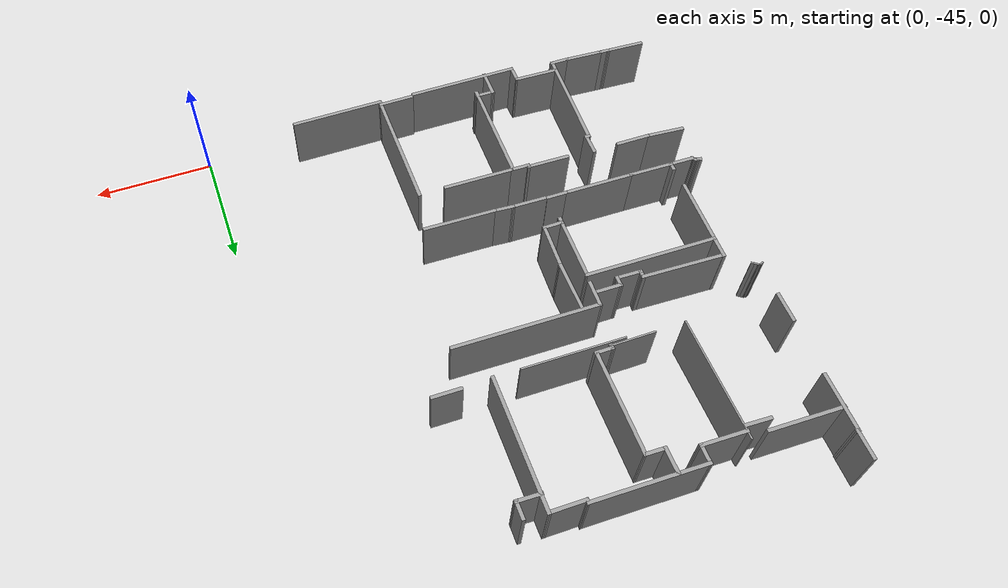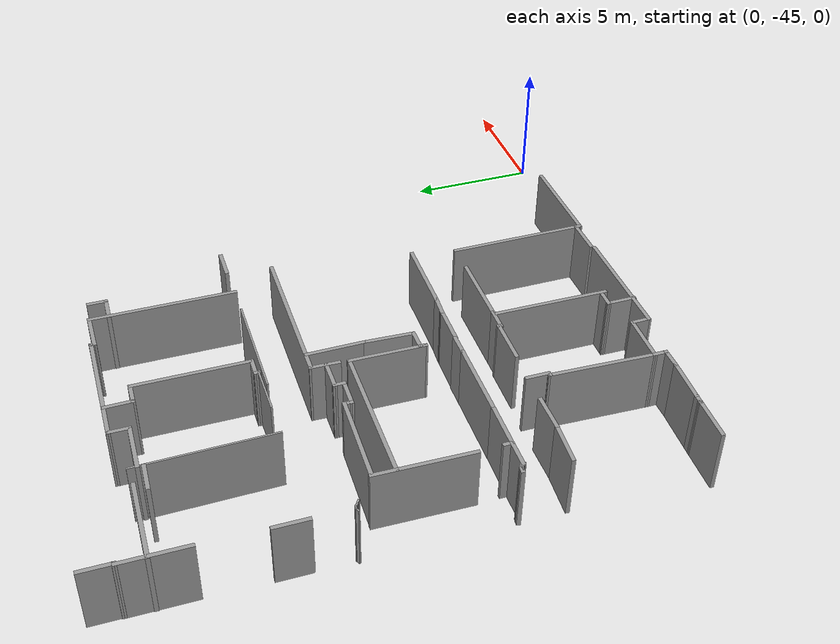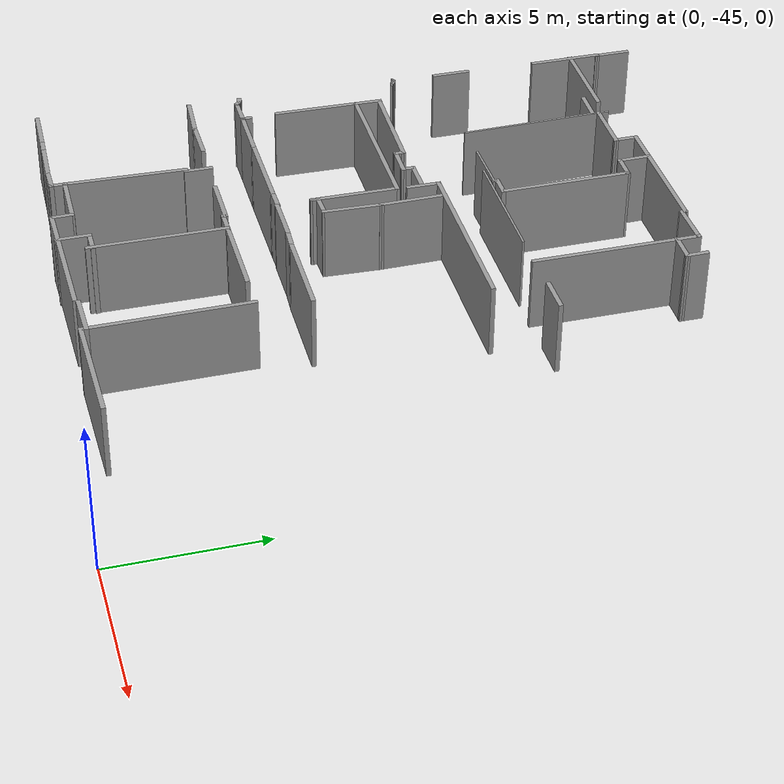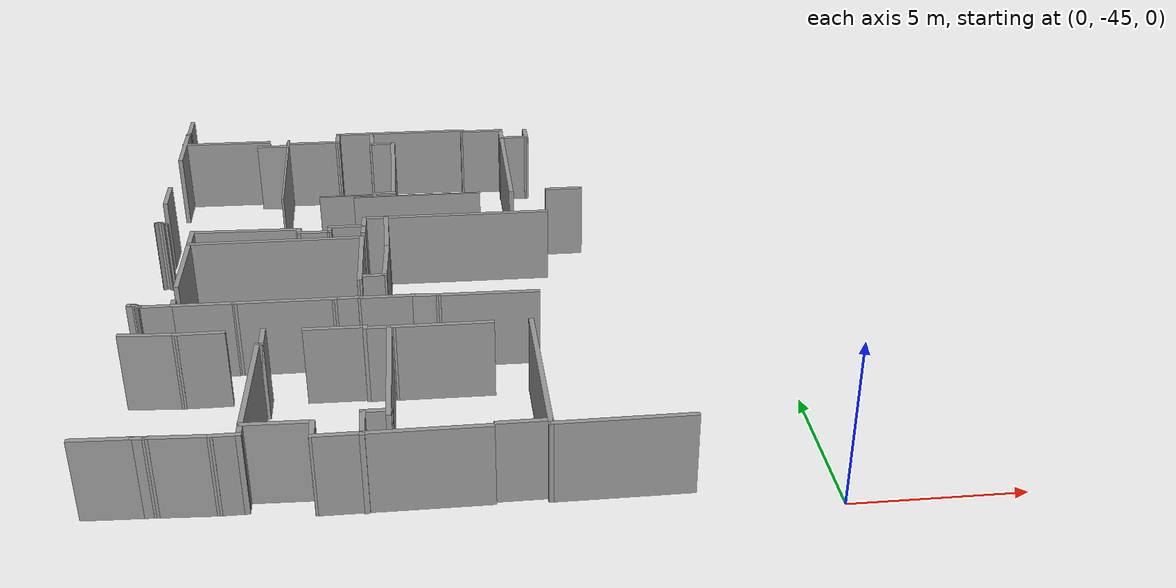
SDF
<sdf version="1.6">
 <model name="3_north">
  <pose>-14.229 -33.4428 0 0 -0 0</pose>
  <link name="Wall_183">
   <collision name="Wall_183_Collision">
    <geometry><box><size>3.97957 0.15 2.5</size></box></geometry>
    <pose>0 0 1.25 0 -0 0</pose>
   </collision>
   <visual name="Wall_183_Visual">
    <pose>0 0 1.25 0 -0 0</pose>
    <geometry><box><size>3.97957 0.15 2.5</size></box></geometry>
    <material>
     <script><uri>file://media/materials/scripts/gazebo.material</uri><name>Gazebo/Grey</name></script>
     <ambient>1 1 1 1</ambient>
    </material>
   </visual>
   <pose>8.3757 -10.5966 0 0 0 -3.13559</pose>
  </link>
  <link name="Wall_184">
   <collision name="Wall_184_Collision">
    <geometry><box><size>5.46311 0.15 2.5</size></box></geometry>
    <pose>0 0 1.25 0 -0 0</pose>
   </collision>
   <visual name="Wall_184_Visual">
    <pose>0 0 1.25 0 -0 0</pose>
    <geometry><box><size>5.46311 0.15 2.5</size></box></geometry>
    <material>
     <script><uri>file://media/materials/scripts/gazebo.material</uri><name>Gazebo/Grey</name></script>
     <ambient>1 1 1 1</ambient>
    </material>
   </visual>
   <pose>6.4437 -7.95163 0 0 -0 1.57729</pose>
  </link>
  <link name="Wall_187">
   <collision name="Wall_187_Collision">
    <geometry><box><size>1.54155 0.15 2.5</size></box></geometry>
    <pose>0 0 1.25 0 -0 0</pose>
   </collision>
   <visual name="Wall_187_Visual">
    <pose>0 0 1.25 0 -0 0</pose>
    <geometry><box><size>1.54155 0.15 2.5</size></box></geometry>
    <material>
     <script><uri>file://media/materials/scripts/gazebo.material</uri><name>Gazebo/Grey</name></script>
     <ambient>1 1 1 1</ambient>
    </material>
   </visual>
   <pose>5.7652 -10.4529 0 0 0 -3.13333</pose>
  </link>
  <link name="Wall_189">
   <collision name="Wall_189_Collision">
    <geometry><box><size>4.75023 0.15 2.5</size></box></geometry>
    <pose>0 0 1.25 0 -0 0</pose>
   </collision>
   <visual name="Wall_189_Visual">
    <pose>0 0 1.25 0 -0 0</pose>
    <geometry><box><size>4.75023 0.15 2.5</size></box></geometry>
    <material>
     <script><uri>file://media/materials/scripts/gazebo.material</uri><name>Gazebo/Grey</name></script>
     <ambient>1 1 1 1</ambient>
    </material>
   </visual>
   <pose>2.63145 -10.5564 0 0 0 -3.13909</pose>
  </link>
  <link name="Wall_190">
   <collision name="Wall_190_Collision">
    <geometry><box><size>0.805601 0.15 2.5</size></box></geometry>
    <pose>0 0 1.25 0 -0 0</pose>
   </collision>
   <visual name="Wall_190_Visual">
    <pose>0 0 1.25 0 -0 0</pose>
    <geometry><box><size>0.805601 0.15 2.5</size></box></geometry>
    <material>
     <script><uri>file://media/materials/scripts/gazebo.material</uri><name>Gazebo/Grey</name></script>
     <ambient>1 1 1 1</ambient>
    </material>
   </visual>
   <pose>0.325705 -10.2344 0 0 -0 1.58834</pose>
  </link>
  <link name="Wall_192">
   <collision name="Wall_192_Collision">
    <geometry><box><size>1.87515 0.15 2.5</size></box></geometry>
    <pose>0 0 1.25 0 -0 0</pose>
   </collision>
   <visual name="Wall_192_Visual">
    <pose>0 0 1.25 0 -0 0</pose>
    <geometry><box><size>1.87515 0.15 2.5</size></box></geometry>
    <material>
     <script><uri>file://media/materials/scripts/gazebo.material</uri><name>Gazebo/Grey</name></script>
     <ambient>1 1 1 1</ambient>
    </material>
   </visual>
   <pose>0.768455 -5.18013 0 0 0 -0.013333</pose>
  </link>
  <link name="Wall_193">
   <collision name="Wall_193_Collision">
    <geometry><box><size>0.219952 0.15 2.5</size></box></geometry>
    <pose>0 0 1.25 0 -0 0</pose>
   </collision>
   <visual name="Wall_193_Visual">
    <pose>0 0 1.25 0 -0 0</pose>
    <geometry><box><size>0.219952 0.15 2.5</size></box></geometry>
    <material>
     <script><uri>file://media/materials/scripts/gazebo.material</uri><name>Gazebo/Grey</name></script>
     <ambient>1 1 1 1</ambient>
    </material>
   </visual>
   <pose>1.63095 -5.22613 0 0 0 -1.5708</pose>
  </link>
  <link name="Wall_194">
   <collision name="Wall_194_Collision">
    <geometry><box><size>0.943583 0.15 2.5</size></box></geometry>
    <pose>0 0 1.25 0 -0 0</pose>
   </collision>
   <visual name="Wall_194_Visual">
    <pose>0 0 1.25 0 -0 0</pose>
    <geometry><box><size>0.943583 0.15 2.5</size></box></geometry>
    <material>
     <script><uri>file://media/materials/scripts/gazebo.material</uri><name>Gazebo/Grey</name></script>
     <ambient>1 1 1 1</ambient>
    </material>
   </visual>
   <pose>2.02771 -5.26638 0 0 0 -0.014492</pose>
  </link>
  <link name="Wall_195">
   <collision name="Wall_195_Collision">
    <geometry><box><size>2.99988 0.15 2.5</size></box></geometry>
    <pose>0 0 1.25 0 -0 0</pose>
   </collision>
   <visual name="Wall_195_Visual">
    <pose>0 0 1.25 0 -0 0</pose>
    <geometry><box><size>2.99988 0.15 2.5</size></box></geometry>
    <material>
     <script><uri>file://media/materials/scripts/gazebo.material</uri><name>Gazebo/Grey</name></script>
     <ambient>1 1 1 1</ambient>
    </material>
   </visual>
   <pose>3.84936 -5.28218 0 0 0 -0.007049</pose>
  </link>
  <link name="Wall_198">
   <collision name="Wall_198_Collision">
    <geometry><box><size>4.60218 0.15 2.5</size></box></geometry>
    <pose>0 0 1.25 0 -0 0</pose>
   </collision>
   <visual name="Wall_198_Visual">
    <pose>0 0 1.25 0 -0 0</pose>
    <geometry><box><size>4.60218 0.15 2.5</size></box></geometry>
    <material>
     <script><uri>file://media/materials/scripts/gazebo.material</uri><name>Gazebo/Grey</name></script>
     <ambient>1 1 1 1</ambient>
    </material>
   </visual>
   <pose>2.30017 -7.50914 0 0 0 -1.57666</pose>
  </link>
  <link name="Wall_200">
   <collision name="Wall_200_Collision">
    <geometry><box><size>1.18478 0.15 2.5</size></box></geometry>
    <pose>0 0 1.25 0 -0 0</pose>
   </collision>
   <visual name="Wall_200_Visual">
    <pose>0 0 1.25 0 -0 0</pose>
    <geometry><box><size>1.18478 0.15 2.5</size></box></geometry>
    <material>
     <script><uri>file://media/materials/scripts/gazebo.material</uri><name>Gazebo/Grey</name></script>
     <ambient>1 1 1 1</ambient>
    </material>
   </visual>
   <pose>1.60887 -10.0787 0 0 -0 1.5708</pose>
  </link>
  <link name="Wall_201">
   <collision name="Wall_201_Collision">
    <geometry><box><size>0.863096 0.15 2.5</size></box></geometry>
    <pose>0 0 1.25 0 -0 0</pose>
   </collision>
   <visual name="Wall_201_Visual">
    <pose>0 0 1.25 0 -0 0</pose>
    <geometry><box><size>0.863096 0.15 2.5</size></box></geometry>
    <material>
     <script><uri>file://media/materials/scripts/gazebo.material</uri><name>Gazebo/Grey</name></script>
     <ambient>1 1 1 1</ambient>
    </material>
   </visual>
   <pose>1.96539 -9.56566 0 0 0 -0.012195</pose>
  </link>
  <link name="Wall_203">
   <collision name="Wall_203_Collision">
    <geometry><box><size>1.99219 0.15 2.5</size></box></geometry>
    <pose>0 0 1.25 0 -0 0</pose>
   </collision>
   <visual name="Wall_203_Visual">
    <pose>0 0 1.25 0 -0 0</pose>
    <geometry><box><size>1.99219 0.15 2.5</size></box></geometry>
    <material>
     <script><uri>file://media/materials/scripts/gazebo.material</uri><name>Gazebo/Grey</name></script>
     <ambient>1 1 1 1</ambient>
    </material>
   </visual>
   <pose>-0.600805 -9.8818 0 0 -0 3.11463</pose>
  </link>
  <link name="Wall_204">
   <collision name="Wall_204_Collision">
    <geometry><box><size>0.593819 0.15 2.5</size></box></geometry>
    <pose>0 0 1.25 0 -0 0</pose>
   </collision>
   <visual name="Wall_204_Visual">
    <pose>0 0 1.25 0 -0 0</pose>
    <geometry><box><size>0.593819 0.15 2.5</size></box></geometry>
    <material>
     <script><uri>file://media/materials/scripts/gazebo.material</uri><name>Gazebo/Grey</name></script>
     <ambient>1 1 1 1</ambient>
    </material>
   </visual>
   <pose>-1.52156 -10.0787 0 0 0 -1.5708</pose>
  </link>
  <link name="Wall_205">
   <collision name="Wall_205_Collision">
    <geometry><box><size>0.863096 0.15 2.5</size></box></geometry>
    <pose>0 0 1.25 0 -0 0</pose>
   </collision>
   <visual name="Wall_205_Visual">
    <pose>0 0 1.25 0 -0 0</pose>
    <geometry><box><size>0.863096 0.15 2.5</size></box></geometry>
    <material>
     <script><uri>file://media/materials/scripts/gazebo.material</uri><name>Gazebo/Grey</name></script>
     <ambient>1 1 1 1</ambient>
    </material>
   </visual>
   <pose>-1.87809 -10.3004 0 0 -0 3.14159</pose>
  </link>
  <link name="Wall_206">
   <collision name="Wall_206_Collision">
    <geometry><box><size>1.77797 0.15 2.5</size></box></geometry>
    <pose>0 0 1.25 0 -0 0</pose>
   </collision>
   <visual name="Wall_206_Visual">
    <pose>0 0 1.25 0 -0 0</pose>
    <geometry><box><size>1.77797 0.15 2.5</size></box></geometry>
    <material>
     <script><uri>file://media/materials/scripts/gazebo.material</uri><name>Gazebo/Grey</name></script>
     <ambient>1 1 1 1</ambient>
    </material>
   </visual>
   <pose>-3.04765 -10.2613 0 0 -0 3.0935</pose>
  </link>
  <link name="Wall_207">
   <collision name="Wall_207_Collision">
    <geometry><box><size>0.480892 0.15 2.5</size></box></geometry>
    <pose>0 0 1.25 0 -0 0</pose>
   </collision>
   <visual name="Wall_207_Visual">
    <pose>0 0 1.25 0 -0 0</pose>
    <geometry><box><size>0.480892 0.15 2.5</size></box></geometry>
    <material>
     <script><uri>file://media/materials/scripts/gazebo.material</uri><name>Gazebo/Grey</name></script>
     <ambient>1 1 1 1</ambient>
    </material>
   </visual>
   <pose>-4.02591 -10.2135 0 0 -0 3.08901</pose>
  </link>
  <link name="Wall_208">
   <collision name="Wall_208_Collision">
    <geometry><box><size>1.74247 0.15 2.5</size></box></geometry>
    <pose>0 0 1.25 0 -0 0</pose>
   </collision>
   <visual name="Wall_208_Visual">
    <pose>0 0 1.25 0 -0 0</pose>
    <geometry><box><size>1.74247 0.15 2.5</size></box></geometry>
    <material>
     <script><uri>file://media/materials/scripts/gazebo.material</uri><name>Gazebo/Grey</name></script>
     <ambient>1 1 1 1</ambient>
    </material>
   </visual>
   <pose>-4.98678 -10.1744 0 0 -0 3.10336</pose>
  </link>
  <link name="Wall_210">
   <collision name="Wall_210_Collision">
    <geometry><box><size>4.11824 0.15 2.5</size></box></geometry>
    <pose>0 0 1.25 0 -0 0</pose>
   </collision>
   <visual name="Wall_210_Visual">
    <pose>0 0 1.25 0 -0 0</pose>
    <geometry><box><size>4.11824 0.15 2.5</size></box></geometry>
    <material>
     <script><uri>file://media/materials/scripts/gazebo.material</uri><name>Gazebo/Grey</name></script>
     <ambient>1 1 1 1</ambient>
    </material>
   </visual>
   <pose>-1.45402 -7.874 0 0 -0 1.53675</pose>
  </link>
  <link name="Wall_211">
   <collision name="Wall_211_Collision">
    <geometry><box><size>0.2535 0.15 2.5</size></box></geometry>
    <pose>0 0 1.25 0 -0 0</pose>
   </collision>
   <visual name="Wall_211_Visual">
    <pose>0 0 1.25 0 -0 0</pose>
    <geometry><box><size>0.2535 0.15 2.5</size></box></geometry>
    <material>
     <script><uri>file://media/materials/scripts/gazebo.material</uri><name>Gazebo/Grey</name></script>
     <ambient>1 1 1 1</ambient>
    </material>
   </visual>
   <pose>-1.33473 -5.89103 0 0 -0 0</pose>
  </link>
  <link name="Wall_212">
   <collision name="Wall_212_Collision">
    <geometry><box><size>0.9665 0.15 2.5</size></box></geometry>
    <pose>0 0 1.25 0 -0 0</pose>
   </collision>
   <visual name="Wall_212_Visual">
    <pose>0 0 1.25 0 -0 0</pose>
    <geometry><box><size>0.9665 0.15 2.5</size></box></geometry>
    <material>
     <script><uri>file://media/materials/scripts/gazebo.material</uri><name>Gazebo/Grey</name></script>
     <ambient>1 1 1 1</ambient>
    </material>
   </visual>
   <pose>-1.28298 -5.48278 0 0 -0 1.5708</pose>
  </link>
  <link name="Wall_214">
   <collision name="Wall_214_Collision">
    <geometry><box><size>1.71679 0.15 2.5</size></box></geometry>
    <pose>0 0 1.25 0 -0 0</pose>
   </collision>
   <visual name="Wall_214_Visual">
    <pose>0 0 1.25 0 -0 0</pose>
    <geometry><box><size>1.71679 0.15 2.5</size></box></geometry>
    <material>
     <script><uri>file://media/materials/scripts/gazebo.material</uri><name>Gazebo/Grey</name></script>
     <ambient>1 1 1 1</ambient>
    </material>
   </visual>
   <pose>-4.54845 -5.0405 0 0 0 -0.071403</pose>
  </link>
  <link name="Wall_215">
   <collision name="Wall_215_Collision">
    <geometry><box><size>1.5 0.15 2.5</size></box></geometry>
    <pose>0 0 1.25 0 -0 0</pose>
   </collision>
   <visual name="Wall_215_Visual">
    <pose>0 0 1.25 0 -0 0</pose>
    <geometry><box><size>1.5 0.15 2.5</size></box></geometry>
    <material>
     <script><uri>file://media/materials/scripts/gazebo.material</uri><name>Gazebo/Grey</name></script>
     <ambient>1 1 1 1</ambient>
    </material>
   </visual>
   <pose>-3.09205 -5.09639 0 0 -0 0</pose>
  </link>
  <link name="Wall_29">
   <collision name="Wall_29_Collision">
    <geometry><box><size>1.25 0.15 2.5</size></box></geometry>
    <pose>0 0 1.25 0 -0 0</pose>
   </collision>
   <visual name="Wall_29_Visual">
    <pose>0 0 1.25 0 -0 0</pose>
    <geometry><box><size>1.25 0.15 2.5</size></box></geometry>
    <material>
     <script><uri>file://media/materials/scripts/gazebo.material</uri><name>Gazebo/Grey</name></script>
     <ambient>1 1 1 1</ambient>
    </material>
   </visual>
   <pose>-5.0753 10.2692 0 0 0 -1.5708</pose>
  </link>
  <link name="Wall_30">
   <collision name="Wall_30_Collision">
    <geometry><box><size>0.182933 0.15 2.5</size></box></geometry>
    <pose>0 0 1.25 0 -0 0</pose>
   </collision>
   <visual name="Wall_30_Visual">
    <pose>0 0 1.25 0 -0 0</pose>
    <geometry><box><size>0.182933 0.15 2.5</size></box></geometry>
    <material>
     <script><uri>file://media/materials/scripts/gazebo.material</uri><name>Gazebo/Grey</name></script>
     <ambient>1 1 1 1</ambient>
    </material>
   </visual>
   <pose>-5.09173 9.72018 0 0 -0 3.08241</pose>
  </link>
  <link name="Wall_31">
   <collision name="Wall_31_Collision">
    <geometry><box><size>2.5 0.15 2.5</size></box></geometry>
    <pose>0 0 1.25 0 -0 0</pose>
   </collision>
   <visual name="Wall_31_Visual">
    <pose>0 0 1.25 0 -0 0</pose>
    <geometry><box><size>2.5 0.15 2.5</size></box></geometry>
    <material>
     <script><uri>file://media/materials/scripts/gazebo.material</uri><name>Gazebo/Grey</name></script>
     <ambient>1 1 1 1</ambient>
    </material>
   </visual>
   <pose>-5.10817 8.54616 0 0 0 -1.5708</pose>
  </link>
  <link name="Wall_33">
   <collision name="Wall_33_Collision">
    <geometry><box><size>1.32202 0.15 2.5</size></box></geometry>
    <pose>0 0 1.25 0 -0 0</pose>
   </collision>
   <visual name="Wall_33_Visual">
    <pose>0 0 1.25 0 -0 0</pose>
    <geometry><box><size>1.32202 0.15 2.5</size></box></geometry>
    <material>
     <script><uri>file://media/materials/scripts/gazebo.material</uri><name>Gazebo/Grey</name></script>
     <ambient>1 1 1 1</ambient>
    </material>
   </visual>
   <pose>-5.17314 4.33924 0 0 0 -1.5708</pose>
  </link>
  <link name="Wall_378">
   <collision name="Wall_378_Collision">
    <geometry><box><size>0.27695 0.15 2.5</size></box></geometry>
    <pose>0 0 1.25 0 -0 0</pose>
   </collision>
   <visual name="Wall_378_Visual">
    <pose>0 0 1.25 0 -0 0</pose>
    <geometry><box><size>0.27695 0.15 2.5</size></box></geometry>
    <material>
     <script><uri>file://media/materials/scripts/gazebo.material</uri><name>Gazebo/Grey</name></script>
     <ambient>1 1 1 1</ambient>
    </material>
   </visual>
   <pose>-5.26085 -3.24571 0 0 0 -0.135528</pose>
  </link>
  <link name="Wall_379">
   <collision name="Wall_379_Collision">
    <geometry><box><size>0.231863 0.15 2.5</size></box></geometry>
    <pose>0 0 1.25 0 -0 0</pose>
   </collision>
   <visual name="Wall_379_Visual">
    <pose>0 0 1.25 0 -0 0</pose>
    <geometry><box><size>0.231863 0.15 2.5</size></box></geometry>
    <material>
     <script><uri>file://media/materials/scripts/gazebo.material</uri><name>Gazebo/Grey</name></script>
     <ambient>1 1 1 1</ambient>
    </material>
   </visual>
   <pose>-5.1608 -3.27143 0 0 0 -0.432408</pose>
  </link>
  <link name="Wall_380">
   <collision name="Wall_380_Collision">
    <geometry><box><size>0.247366 0.15 2.5</size></box></geometry>
    <pose>0 0 1.25 0 -0 0</pose>
   </collision>
   <visual name="Wall_380_Visual">
    <pose>0 0 1.25 0 -0 0</pose>
    <geometry><box><size>0.247366 0.15 2.5</size></box></geometry>
    <material>
     <script><uri>file://media/materials/scripts/gazebo.material</uri><name>Gazebo/Grey</name></script>
     <ambient>1 1 1 1</ambient>
    </material>
   </visual>
   <pose>-5.08647 -3.32003 0 0 0 -0.702257</pose>
  </link>
  <link name="Wall_381">
   <collision name="Wall_381_Collision">
    <geometry><box><size>0.194655 0.15 2.5</size></box></geometry>
    <pose>0 0 1.25 0 -0 0</pose>
   </collision>
   <visual name="Wall_381_Visual">
    <pose>0 0 1.25 0 -0 0</pose>
    <geometry><box><size>0.194655 0.15 2.5</size></box></geometry>
    <material>
     <script><uri>file://media/materials/scripts/gazebo.material</uri><name>Gazebo/Grey</name></script>
     <ambient>1 1 1 1</ambient>
    </material>
   </visual>
   <pose>-5.03215 -3.36577 0 0 0 -0.694738</pose>
  </link>
  <link name="Wall_382">
   <collision name="Wall_382_Collision">
    <geometry><box><size>1.12205 0.15 2.5</size></box></geometry>
    <pose>0 0 1.25 0 -0 0</pose>
   </collision>
   <visual name="Wall_382_Visual">
    <pose>0 0 1.25 0 -0 0</pose>
    <geometry><box><size>1.12205 0.15 2.5</size></box></geometry>
    <material>
     <script><uri>file://media/materials/scripts/gazebo.material</uri><name>Gazebo/Grey</name></script>
     <ambient>1 1 1 1</ambient>
    </material>
   </visual>
   <pose>-4.52901 -3.38578 0 0 0 -0.011764</pose>
  </link>
  <link name="Wall_383">
   <collision name="Wall_383_Collision">
    <geometry><box><size>1.95697 0.15 2.5</size></box></geometry>
    <pose>0 0 1.25 0 -0 0</pose>
   </collision>
   <visual name="Wall_383_Visual">
    <pose>0 0 1.25 0 -0 0</pose>
    <geometry><box><size>1.95697 0.15 2.5</size></box></geometry>
    <material>
     <script><uri>file://media/materials/scripts/gazebo.material</uri><name>Gazebo/Grey</name></script>
     <ambient>1 1 1 1</ambient>
    </material>
   </visual>
   <pose>-3.13965 -3.4058 0 0 0 -0.015821</pose>
  </link>
  <link name="Wall_385">
   <collision name="Wall_385_Collision">
    <geometry><box><size>3.07747 0.15 2.5</size></box></geometry>
    <pose>0 0 1.25 0 -0 0</pose>
   </collision>
   <visual name="Wall_385_Visual">
    <pose>0 0 1.25 0 -0 0</pose>
    <geometry><box><size>3.07747 0.15 2.5</size></box></geometry>
    <material>
     <script><uri>file://media/materials/scripts/gazebo.material</uri><name>Gazebo/Grey</name></script>
     <ambient>1 1 1 1</ambient>
    </material>
   </visual>
   <pose>-0.761153 -3.43153 0 0 0 -0.007812</pose>
  </link>
  <link name="Wall_386">
   <collision name="Wall_386_Collision">
    <geometry><box><size>0.921867 0.15 2.5</size></box></geometry>
    <pose>0 0 1.25 0 -0 0</pose>
   </collision>
   <visual name="Wall_386_Visual">
    <pose>0 0 1.25 0 -0 0</pose>
    <geometry><box><size>0.921867 0.15 2.5</size></box></geometry>
    <material>
     <script><uri>file://media/materials/scripts/gazebo.material</uri><name>Gazebo/Grey</name></script>
     <ambient>1 1 1 1</ambient>
    </material>
   </visual>
   <pose>1.08847 -3.44296 0 0 -0 0</pose>
  </link>
  <link name="Wall_387">
   <collision name="Wall_387_Collision">
    <geometry><box><size>0.17287 0.15 2.5</size></box></geometry>
    <pose>0 0 1.25 0 -0 0</pose>
   </collision>
   <visual name="Wall_387_Visual">
    <pose>0 0 1.25 0 -0 0</pose>
    <geometry><box><size>0.17287 0.15 2.5</size></box></geometry>
    <material>
     <script><uri>file://media/materials/scripts/gazebo.material</uri><name>Gazebo/Grey</name></script>
     <ambient>1 1 1 1</ambient>
    </material>
   </visual>
   <pose>1.4744 -3.4544 0 0 0 -1.5708</pose>
  </link>
  <link name="Wall_388">
   <collision name="Wall_388_Collision">
    <geometry><box><size>1.68247 0.15 2.5</size></box></geometry>
    <pose>0 0 1.25 0 -0 0</pose>
   </collision>
   <visual name="Wall_388_Visual">
    <pose>0 0 1.25 0 -0 0</pose>
    <geometry><box><size>1.68247 0.15 2.5</size></box></geometry>
    <material>
     <script><uri>file://media/materials/scripts/gazebo.material</uri><name>Gazebo/Grey</name></script>
     <ambient>1 1 1 1</ambient>
    </material>
   </visual>
   <pose>2.24055 -3.47727 0 0 0 -0.014924</pose>
  </link>
  <link name="Wall_390">
   <collision name="Wall_390_Collision">
    <geometry><box><size>3.12356 0.15 2.5</size></box></geometry>
    <pose>0 0 1.25 0 -0 0</pose>
   </collision>
   <visual name="Wall_390_Visual">
    <pose>0 0 1.25 0 -0 0</pose>
    <geometry><box><size>3.12356 0.15 2.5</size></box></geometry>
    <material>
     <script><uri>file://media/materials/scripts/gazebo.material</uri><name>Gazebo/Grey</name></script>
     <ambient>1 1 1 1</ambient>
    </material>
   </visual>
   <pose>5.27656 -3.56589 0 0 -0 3.12429</pose>
  </link>
  <link name="Wall_391">
   <collision name="Wall_391_Collision">
    <geometry><box><size>0.929285 0.15 2.5</size></box></geometry>
    <pose>0 0 1.25 0 -0 0</pose>
   </collision>
   <visual name="Wall_391_Visual">
    <pose>0 0 1.25 0 -0 0</pose>
    <geometry><box><size>0.929285 0.15 2.5</size></box></geometry>
    <material>
     <script><uri>file://media/materials/scripts/gazebo.material</uri><name>Gazebo/Grey</name></script>
     <ambient>1 1 1 1</ambient>
    </material>
   </visual>
   <pose>3.40121 -3.51443 0 0 -0 3.07551</pose>
  </link>
  <link name="Wall_463">
   <collision name="Wall_463_Collision">
    <geometry><box><size>1.13869 0.15 2.5</size></box></geometry>
    <pose>0 0 1.25 0 -0 0</pose>
   </collision>
   <visual name="Wall_463_Visual">
    <pose>0 0 1.25 0 -0 0</pose>
    <geometry><box><size>1.13869 0.15 2.5</size></box></geometry>
    <material>
     <script><uri>file://media/materials/scripts/gazebo.material</uri><name>Gazebo/Grey</name></script>
     <ambient>1 1 1 1</ambient>
    </material>
   </visual>
   <pose>1.71097 8.5914 0 0 0 -1.55541</pose>
  </link>
  <link name="Wall_464">
   <collision name="Wall_464_Collision">
    <geometry><box><size>0.925795 0.15 2.5</size></box></geometry>
    <pose>0 0 1.25 0 -0 0</pose>
   </collision>
   <visual name="Wall_464_Visual">
    <pose>0 0 1.25 0 -0 0</pose>
    <geometry><box><size>0.925795 0.15 2.5</size></box></geometry>
    <material>
     <script><uri>file://media/materials/scripts/gazebo.material</uri><name>Gazebo/Grey</name></script>
     <ambient>1 1 1 1</ambient>
    </material>
   </visual>
   <pose>2.1064 8.08951 0 0 0 -0.019605</pose>
  </link>
  <link name="Wall_465">
   <collision name="Wall_465_Collision">
    <geometry><box><size>4.34762 0.15 2.5</size></box></geometry>
    <pose>0 0 1.25 0 -0 0</pose>
   </collision>
   <visual name="Wall_465_Visual">
    <pose>0 0 1.25 0 -0 0</pose>
    <geometry><box><size>4.34762 0.15 2.5</size></box></geometry>
    <material>
     <script><uri>file://media/materials/scripts/gazebo.material</uri><name>Gazebo/Grey</name></script>
     <ambient>1 1 1 1</ambient>
    </material>
   </visual>
   <pose>2.49422 5.98309 0 0 0 -1.5708</pose>
  </link>
  <link name="Wall_467">
   <collision name="Wall_467_Collision">
    <geometry><box><size>1.89607 0.07 2.5</size></box></geometry>
    <pose>0 0 1.25 0 -0 0</pose>
   </collision>
   <visual name="Wall_467_Visual">
    <pose>0 0 1.25 0 -0 0</pose>
    <geometry><box><size>1.89607 0.07 2.5</size></box></geometry>
    <material>
     <script><uri>file://media/materials/scripts/gazebo.material</uri><name>Gazebo/Grey</name></script>
     <ambient>1 1 1 1</ambient>
    </material>
   </visual>
   <pose>0.937041 3.69801 0 0 -0 0.004381</pose>
  </link>
  <link name="Wall_469">
   <collision name="Wall_469_Collision">
    <geometry><box><size>4.29792 0.07 2.5</size></box></geometry>
    <pose>0 0 1.25 0 -0 0</pose>
   </collision>
   <visual name="Wall_469_Visual">
    <pose>0 0 1.25 0 -0 0</pose>
    <geometry><box><size>4.29792 0.07 2.5</size></box></geometry>
    <material>
     <script><uri>file://media/materials/scripts/gazebo.material</uri><name>Gazebo/Grey</name></script>
     <ambient>1 1 1 1</ambient>
    </material>
   </visual>
   <pose>3.29393 3.53796 0 0 0 -0.008068</pose>
  </link>
  <link name="Wall_471">
   <collision name="Wall_471_Collision">
    <geometry><box><size>0.255869 0.15 2.5</size></box></geometry>
    <pose>0 0 1.25 0 -0 0</pose>
   </collision>
   <visual name="Wall_471_Visual">
    <pose>0 0 1.25 0 -0 0</pose>
    <geometry><box><size>0.255869 0.15 2.5</size></box></geometry>
    <material>
     <script><uri>file://media/materials/scripts/gazebo.material</uri><name>Gazebo/Grey</name></script>
     <ambient>1 1 1 1</ambient>
    </material>
   </visual>
   <pose>1.84727 3.75486 0 0 -0 1.62316</pose>
  </link>
  <link name="Wall_472">
   <collision name="Wall_472_Collision">
    <geometry><box><size>0.807541 0.15 2.5</size></box></geometry>
    <pose>0 0 1.25 0 -0 0</pose>
   </collision>
   <visual name="Wall_472_Visual">
    <pose>0 0 1.25 0 -0 0</pose>
    <geometry><box><size>0.807541 0.15 2.5</size></box></geometry>
    <material>
     <script><uri>file://media/materials/scripts/gazebo.material</uri><name>Gazebo/Grey</name></script>
     <ambient>1 1 1 1</ambient>
    </material>
   </visual>
   <pose>2.17326 3.80486 0 0 0 -0.008695</pose>
  </link>
  <link name="Wall_474">
   <collision name="Wall_474_Collision">
    <geometry><box><size>6.17083 0.15 2.5</size></box></geometry>
    <pose>0 0 1.25 0 -0 0</pose>
   </collision>
   <visual name="Wall_474_Visual">
    <pose>0 0 1.25 0 -0 0</pose>
    <geometry><box><size>6.17083 0.15 2.5</size></box></geometry>
    <material>
     <script><uri>file://media/materials/scripts/gazebo.material</uri><name>Gazebo/Grey</name></script>
     <ambient>1 1 1 1</ambient>
    </material>
   </visual>
   <pose>4.53027 1.88277 0 0 0 -0.010474</pose>
  </link>
  <link name="Wall_476">
   <collision name="Wall_476_Collision">
    <geometry><box><size>1.1591 0.15 2.5</size></box></geometry>
    <pose>0 0 1.25 0 -0 0</pose>
   </collision>
   <visual name="Wall_476_Visual">
    <pose>0 0 1.25 0 -0 0</pose>
    <geometry><box><size>1.1591 0.15 2.5</size></box></geometry>
    <material>
     <script><uri>file://media/materials/scripts/gazebo.material</uri><name>Gazebo/Grey</name></script>
     <ambient>1 1 1 1</ambient>
    </material>
   </visual>
   <pose>1.51037 1.40984 0 0 0 -1.58992</pose>
  </link>
  <link name="Wall_478">
   <collision name="Wall_478_Collision">
    <geometry><box><size>3.47338 0.15 2.5</size></box></geometry>
    <pose>0 0 1.25 0 -0 0</pose>
   </collision>
   <visual name="Wall_478_Visual">
    <pose>0 0 1.25 0 -0 0</pose>
    <geometry><box><size>3.47338 0.15 2.5</size></box></geometry>
    <material>
     <script><uri>file://media/materials/scripts/gazebo.material</uri><name>Gazebo/Grey</name></script>
     <ambient>1 1 1 1</ambient>
    </material>
   </visual>
   <pose>-2.24436 1.35783 0 0 0 -0.031403</pose>
  </link>
  <link name="Wall_479">
   <collision name="Wall_479_Collision">
    <geometry><box><size>0.402773 0.15 2.5</size></box></geometry>
    <pose>0 0 1.25 0 -0 0</pose>
   </collision>
   <visual name="Wall_479_Visual">
    <pose>0 0 1.25 0 -0 0</pose>
    <geometry><box><size>0.402773 0.15 2.5</size></box></geometry>
    <material>
     <script><uri>file://media/materials/scripts/gazebo.material</uri><name>Gazebo/Grey</name></script>
     <ambient>1 1 1 1</ambient>
    </material>
   </visual>
   <pose>-0.587843 1.17957 0 0 0 -1.60526</pose>
  </link>
  <link name="Wall_480">
   <collision name="Wall_480_Collision">
    <geometry><box><size>1.15034 0.15 2.5</size></box></geometry>
    <pose>0 0 1.25 0 -0 0</pose>
   </collision>
   <visual name="Wall_480_Visual">
    <pose>0 0 1.25 0 -0 0</pose>
    <geometry><box><size>1.15034 0.15 2.5</size></box></geometry>
    <material>
     <script><uri>file://media/materials/scripts/gazebo.material</uri><name>Gazebo/Grey</name></script>
     <ambient>1 1 1 1</ambient>
    </material>
   </visual>
   <pose>-0.092191 1.04044 0 0 0 -0.026081</pose>
  </link>
  <link name="Wall_481">
   <collision name="Wall_481_Collision">
    <geometry><box><size>0.48913 0.15 2.5</size></box></geometry>
    <pose>0 0 1.25 0 -0 0</pose>
   </collision>
   <visual name="Wall_481_Visual">
    <pose>0 0 1.25 0 -0 0</pose>
    <geometry><box><size>0.48913 0.15 2.5</size></box></geometry>
    <material>
     <script><uri>file://media/materials/scripts/gazebo.material</uri><name>Gazebo/Grey</name></script>
     <ambient>1 1 1 1</ambient>
    </material>
   </visual>
   <pose>0.407809 1.19696 0 0 -0 1.5708</pose>
  </link>
  <link name="Wall_482">
   <collision name="Wall_482_Collision">
    <geometry><box><size>1.23699 0.15 2.5</size></box></geometry>
    <pose>0 0 1.25 0 -0 0</pose>
   </collision>
   <visual name="Wall_482_Visual">
    <pose>0 0 1.25 0 -0 0</pose>
    <geometry><box><size>1.23699 0.15 2.5</size></box></geometry>
    <material>
     <script><uri>file://media/materials/scripts/gazebo.material</uri><name>Gazebo/Grey</name></script>
     <ambient>1 1 1 1</ambient>
    </material>
   </visual>
   <pose>0.951288 1.36218 0 0 0 -0.008</pose>
  </link>
  <link name="Wall_487">
   <collision name="Wall_487_Collision">
    <geometry><box><size>0.177372 0.07 2.5</size></box></geometry>
    <pose>0 0 1.25 0 -0 0</pose>
   </collision>
   <visual name="Wall_487_Visual">
    <pose>0 0 1.25 0 -0 0</pose>
    <geometry><box><size>0.177372 0.07 2.5</size></box></geometry>
    <material>
     <script><uri>file://media/materials/scripts/gazebo.material</uri><name>Gazebo/Grey</name></script>
     <ambient>1 1 1 1</ambient>
    </material>
   </visual>
   <pose>-5.26046 2.25301 0 0 -0 0.442817</pose>
  </link>
  <link name="Wall_488">
   <collision name="Wall_488_Collision">
    <geometry><box><size>0.175537 0.07 2.5</size></box></geometry>
    <pose>0 0 1.25 0 -0 0</pose>
   </collision>
   <visual name="Wall_488_Visual">
    <pose>0 0 1.25 0 -0 0</pose>
    <geometry><box><size>0.175537 0.07 2.5</size></box></geometry>
    <material>
     <script><uri>file://media/materials/scripts/gazebo.material</uri><name>Gazebo/Grey</name></script>
     <ambient>1 1 1 1</ambient>
    </material>
   </visual>
   <pose>-5.16046 2.26451 0 0 0 -0.219697</pose>
  </link>
  <link name="Wall_489">
   <collision name="Wall_489_Collision">
    <geometry><box><size>0.217635 0.07 2.5</size></box></geometry>
    <pose>0 0 1.25 0 -0 0</pose>
   </collision>
   <visual name="Wall_489_Visual">
    <pose>0 0 1.25 0 -0 0</pose>
    <geometry><box><size>0.217635 0.07 2.5</size></box></geometry>
    <material>
     <script><uri>file://media/materials/scripts/gazebo.material</uri><name>Gazebo/Grey</name></script>
     <ambient>1 1 1 1</ambient>
    </material>
   </visual>
   <pose>-5.04896 2.21001 0 0 0 -0.621824</pose>
  </link>
  <link name="Wall_490">
   <collision name="Wall_490_Collision">
    <geometry><box><size>0.173175 0.07 2.5</size></box></geometry>
    <pose>0 0 1.25 0 -0 0</pose>
   </collision>
   <visual name="Wall_490_Visual">
    <pose>0 0 1.25 0 -0 0</pose>
    <geometry><box><size>0.173175 0.07 2.5</size></box></geometry>
    <material>
     <script><uri>file://media/materials/scripts/gazebo.material</uri><name>Gazebo/Grey</name></script>
     <ambient>1 1 1 1</ambient>
    </material>
   </visual>
   <pose>-4.94596 2.13851 0 0 0 -0.585314</pose>
  </link>
  <link name="Wall_492">
   <collision name="Wall_492_Collision">
    <geometry><box><size>3.75947 0.15 2.5</size></box></geometry>
    <pose>0 0 1.25 0 -0 0</pose>
   </collision>
   <visual name="Wall_492_Visual">
    <pose>0 0 1.25 0 -0 0</pose>
    <geometry><box><size>3.75947 0.15 2.5</size></box></geometry>
    <material>
     <script><uri>file://media/materials/scripts/gazebo.material</uri><name>Gazebo/Grey</name></script>
     <ambient>1 1 1 1</ambient>
    </material>
   </visual>
   <pose>-4.04935 -0.380053 0 0 -0 1.55388</pose>
  </link>
  <link name="Wall_494">
   <collision name="Wall_494_Collision">
    <geometry><box><size>0.399642 0.15 2.5</size></box></geometry>
    <pose>0 0 1.25 0 -0 0</pose>
   </collision>
   <visual name="Wall_494_Visual">
    <pose>0 0 1.25 0 -0 0</pose>
    <geometry><box><size>0.399642 0.15 2.5</size></box></geometry>
    <material>
     <script><uri>file://media/materials/scripts/gazebo.material</uri><name>Gazebo/Grey</name></script>
     <ambient>1 1 1 1</ambient>
    </material>
   </visual>
   <pose>-4.04321 -3.25934 0 0 0 -1.5708</pose>
  </link>
  <link name="Wall_496">
   <collision name="Wall_496_Collision">
    <geometry><box><size>5.63994 0.15 2.5</size></box></geometry>
    <pose>0 0 1.25 0 -0 0</pose>
   </collision>
   <visual name="Wall_496_Visual">
    <pose>0 0 1.25 0 -0 0</pose>
    <geometry><box><size>5.63994 0.15 2.5</size></box></geometry>
    <material>
     <script><uri>file://media/materials/scripts/gazebo.material</uri><name>Gazebo/Grey</name></script>
     <ambient>1 1 1 1</ambient>
    </material>
   </visual>
   <pose>-1.28329 0.555401 0 0 0 -0.011019</pose>
  </link>
  <link name="Wall_497">
   <collision name="Wall_497_Collision">
    <geometry><box><size>2.97814 0.15 2.5</size></box></geometry>
    <pose>0 0 1.25 0 -0 0</pose>
   </collision>
   <visual name="Wall_497_Visual">
    <pose>0 0 1.25 0 -0 0</pose>
    <geometry><box><size>2.97814 0.15 2.5</size></box></geometry>
    <material>
     <script><uri>file://media/materials/scripts/gazebo.material</uri><name>Gazebo/Grey</name></script>
     <ambient>1 1 1 1</ambient>
    </material>
   </visual>
   <pose>1.44639 -0.888834 0 0 0 -1.58149</pose>
  </link>
  <link name="Wall_498">
   <collision name="Wall_498_Collision">
    <geometry><box><size>0.346743 0.15 2.5</size></box></geometry>
    <pose>0 0 1.25 0 -0 0</pose>
   </collision>
   <visual name="Wall_498_Visual">
    <pose>0 0 1.25 0 -0 0</pose>
    <geometry><box><size>0.346743 0.15 2.5</size></box></geometry>
    <material>
     <script><uri>file://media/materials/scripts/gazebo.material</uri><name>Gazebo/Grey</name></script>
     <ambient>1 1 1 1</ambient>
    </material>
   </visual>
   <pose>1.43505 -2.20452 0 0 -0 1.53235</pose>
  </link>
  <link name="Wall_499">
   <collision name="Wall_499_Collision">
    <geometry><box><size>0.89862 0.15 2.5</size></box></geometry>
    <pose>0 0 1.25 0 -0 0</pose>
   </collision>
   <visual name="Wall_499_Visual">
    <pose>0 0 1.25 0 -0 0</pose>
    <geometry><box><size>0.89862 0.15 2.5</size></box></geometry>
    <material>
     <script><uri>file://media/materials/scripts/gazebo.material</uri><name>Gazebo/Grey</name></script>
     <ambient>1 1 1 1</ambient>
    </material>
   </visual>
   <pose>1.81312 -2.10244 0 0 -0 0.010101</pose>
  </link>
  <link name="Wall_50">
   <collision name="Wall_50_Collision">
    <geometry><box><size>3.19804 0.15 2.5</size></box></geometry>
    <pose>0 0 1.25 0 -0 0</pose>
   </collision>
   <visual name="Wall_50_Visual">
    <pose>0 0 1.25 0 -0 0</pose>
    <geometry><box><size>3.19804 0.15 2.5</size></box></geometry>
    <material>
     <script><uri>file://media/materials/scripts/gazebo.material</uri><name>Gazebo/Grey</name></script>
     <ambient>1 1 1 1</ambient>
    </material>
   </visual>
   <pose>-3.60686 8.71363 0 0 0 -0.018866</pose>
  </link>
  <link name="Wall_500">
   <collision name="Wall_500_Collision">
    <geometry><box><size>2.02676 0.15 2.5</size></box></geometry>
    <pose>0 0 1.25 0 -0 0</pose>
   </collision>
   <visual name="Wall_500_Visual">
    <pose>0 0 1.25 0 -0 0</pose>
    <geometry><box><size>2.02676 0.15 2.5</size></box></geometry>
    <material>
     <script><uri>file://media/materials/scripts/gazebo.material</uri><name>Gazebo/Grey</name></script>
     <ambient>1 1 1 1</ambient>
    </material>
   </visual>
   <pose>2.22522 -1.16105 0 0 -0 1.5305</pose>
  </link>
  <link name="Wall_502">
   <collision name="Wall_502_Collision">
    <geometry><box><size>2.25218 0.15 2.5</size></box></geometry>
    <pose>0 0 1.25 0 -0 0</pose>
   </collision>
   <visual name="Wall_502_Visual">
    <pose>0 0 1.25 0 -0 0</pose>
    <geometry><box><size>2.25218 0.15 2.5</size></box></geometry>
    <material>
     <script><uri>file://media/materials/scripts/gazebo.material</uri><name>Gazebo/Grey</name></script>
     <ambient>1 1 1 1</ambient>
    </material>
   </visual>
   <pose>2.24939 0.827575 0 0 -0 1.58377</pose>
  </link>
  <link name="Wall_52">
   <collision name="Wall_52_Collision">
    <geometry><box><size>1.12811 0.15 2.5</size></box></geometry>
    <pose>0 0 1.25 0 -0 0</pose>
   </collision>
   <visual name="Wall_52_Visual">
    <pose>0 0 1.25 0 -0 0</pose>
    <geometry><box><size>1.12811 0.15 2.5</size></box></geometry>
    <material>
     <script><uri>file://media/materials/scripts/gazebo.material</uri><name>Gazebo/Grey</name></script>
     <ambient>1 1 1 1</ambient>
    </material>
   </visual>
   <pose>-1.88186 8.25363 0 0 0 -0.035279</pose>
  </link>
  <link name="Wall_55">
   <collision name="Wall_55_Collision">
    <geometry><box><size>5.16583 0.07 2.5</size></box></geometry>
    <pose>0 0 1.25 0 -0 0</pose>
   </collision>
   <visual name="Wall_55_Visual">
    <pose>0 0 1.25 0 -0 0</pose>
    <geometry><box><size>5.16583 0.07 2.5</size></box></geometry>
    <material>
     <script><uri>file://media/materials/scripts/gazebo.material</uri><name>Gazebo/Grey</name></script>
     <ambient>1 1 1 1</ambient>
    </material>
   </visual>
   <pose>-1.30096 6.21801 0 0 -0 1.58885</pose>
  </link>
  <link name="Wall_58">
   <collision name="Wall_58_Collision">
    <geometry><box><size>1.95583 0.15 2.5</size></box></geometry>
    <pose>0 0 1.25 0 -0 0</pose>
   </collision>
   <visual name="Wall_58_Visual">
    <pose>0 0 1.25 0 -0 0</pose>
    <geometry><box><size>1.95583 0.15 2.5</size></box></geometry>
    <material>
     <script><uri>file://media/materials/scripts/gazebo.material</uri><name>Gazebo/Grey</name></script>
     <ambient>1 1 1 1</ambient>
    </material>
   </visual>
   <pose>-0.432857 8.42613 0 0 0 -0.019106</pose>
  </link>
  <link name="Wall_59">
   <collision name="Wall_59_Collision">
    <geometry><box><size>0.863 0.15 2.5</size></box></geometry>
    <pose>0 0 1.25 0 -0 0</pose>
   </collision>
   <visual name="Wall_59_Visual">
    <pose>0 0 1.25 0 -0 0</pose>
    <geometry><box><size>0.863 0.15 2.5</size></box></geometry>
    <material>
     <script><uri>file://media/materials/scripts/gazebo.material</uri><name>Gazebo/Grey</name></script>
     <ambient>1 1 1 1</ambient>
    </material>
   </visual>
   <pose>0.469893 8.76538 0 0 -0 1.5708</pose>
  </link>
  <link name="Wall_61">
   <collision name="Wall_61_Collision">
    <geometry><box><size>4.77336 0.15 2.5</size></box></geometry>
    <pose>0 0 1.25 0 -0 0</pose>
   </collision>
   <visual name="Wall_61_Visual">
    <pose>0 0 1.25 0 -0 0</pose>
    <geometry><box><size>4.77336 0.15 2.5</size></box></geometry>
    <material>
     <script><uri>file://media/materials/scripts/gazebo.material</uri><name>Gazebo/Grey</name></script>
     <ambient>1 1 1 1</ambient>
    </material>
   </visual>
   <pose>2.78139 9.09313 0 0 0 -0.012437</pose>
  </link>
  <link name="Wall_62">
   <collision name="Wall_62_Collision">
    <geometry><box><size>0.265 0.15 2.5</size></box></geometry>
    <pose>0 0 1.25 0 -0 0</pose>
   </collision>
   <visual name="Wall_62_Visual">
    <pose>0 0 1.25 0 -0 0</pose>
    <geometry><box><size>0.265 0.15 2.5</size></box></geometry>
    <material>
     <script><uri>file://media/materials/scripts/gazebo.material</uri><name>Gazebo/Grey</name></script>
     <ambient>1 1 1 1</ambient>
    </material>
   </visual>
   <pose>5.09864 9.00688 0 0 0 -1.47113</pose>
  </link>
  <link name="Wall_63">
   <collision name="Wall_63_Collision">
    <geometry><box><size>1.5645 0.15 2.5</size></box></geometry>
    <pose>0 0 1.25 0 -0 0</pose>
   </collision>
   <visual name="Wall_63_Visual">
    <pose>0 0 1.25 0 -0 0</pose>
    <geometry><box><size>1.5645 0.15 2.5</size></box></geometry>
    <material>
     <script><uri>file://media/materials/scripts/gazebo.material</uri><name>Gazebo/Grey</name></script>
     <ambient>1 1 1 1</ambient>
    </material>
   </visual>
   <pose>5.81164 8.94938 0 0 -0 0</pose>
  </link>
  <link name="Wall_64">
   <collision name="Wall_64_Collision">
    <geometry><box><size>5.58402 0.15 2.5</size></box></geometry>
    <pose>0 0 1.25 0 -0 0</pose>
   </collision>
   <visual name="Wall_64_Visual">
    <pose>0 0 1.25 0 -0 0</pose>
    <geometry><box><size>5.58402 0.15 2.5</size></box></geometry>
    <material>
     <script><uri>file://media/materials/scripts/gazebo.material</uri><name>Gazebo/Grey</name></script>
     <ambient>1 1 1 1</ambient>
    </material>
   </visual>
   <pose>6.52595 6.23237 0 0 0 -1.57243</pose>
  </link>
  <link name="Wall_66">
   <collision name="Wall_66_Collision">
    <geometry><box><size>1.08178 0.15 2.5</size></box></geometry>
    <pose>0 0 1.25 0 -0 0</pose>
   </collision>
   <visual name="Wall_66_Visual">
    <pose>0 0 1.25 0 -0 0</pose>
    <geometry><box><size>1.08178 0.15 2.5</size></box></geometry>
    <material>
     <script><uri>file://media/materials/scripts/gazebo.material</uri><name>Gazebo/Grey</name></script>
     <ambient>1 1 1 1</ambient>
    </material>
   </visual>
   <pose>6.97314 8.22488 0 0 0 -0.024686</pose>
  </link>
  <link name="Wall_67">
   <collision name="Wall_67_Collision">
    <geometry><box><size>0.794 0.15 2.5</size></box></geometry>
    <pose>0 0 1.25 0 -0 0</pose>
   </collision>
   <visual name="Wall_67_Visual">
    <pose>0 0 1.25 0 -0 0</pose>
    <geometry><box><size>0.794 0.15 2.5</size></box></geometry>
    <material>
     <script><uri>file://media/materials/scripts/gazebo.material</uri><name>Gazebo/Grey</name></script>
     <ambient>1 1 1 1</ambient>
    </material>
   </visual>
   <pose>7.43889 8.53538 0 0 -0 1.5708</pose>
  </link>
  <link name="Wall_76">
   <collision name="Wall_76_Collision">
    <geometry><box><size>1.2678 0.15 2.5</size></box></geometry>
    <pose>0 0 1.25 0 -0 0</pose>
   </collision>
   <visual name="Wall_76_Visual">
    <pose>0 0 1.25 0 -0 0</pose>
    <geometry><box><size>1.2678 0.15 2.5</size></box></geometry>
    <material>
     <script><uri>file://media/materials/scripts/gazebo.material</uri><name>Gazebo/Grey</name></script>
     <ambient>1 1 1 1</ambient>
    </material>
   </visual>
   <pose>8.33957 3.55654 0 0 -0 3.13571</pose>
  </link>
  <static>1</static>
 </model>
</sdf>
